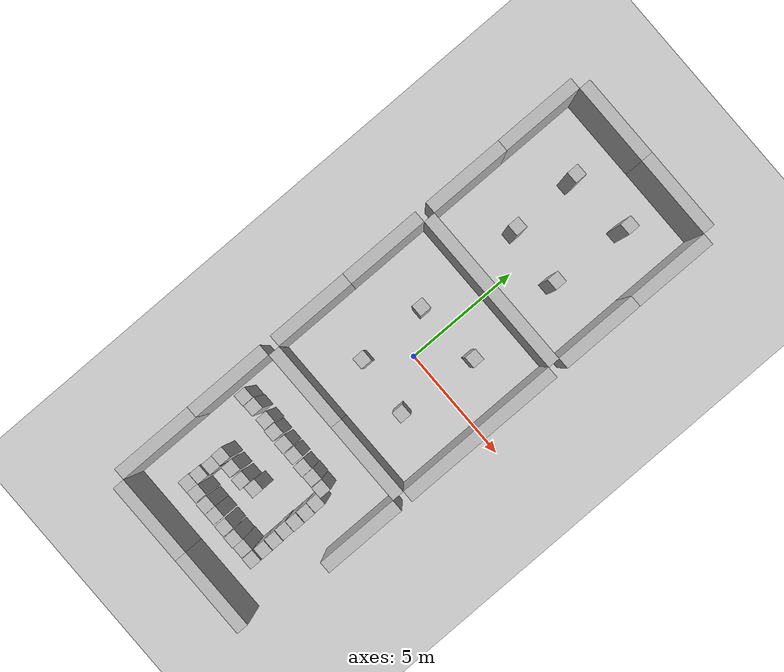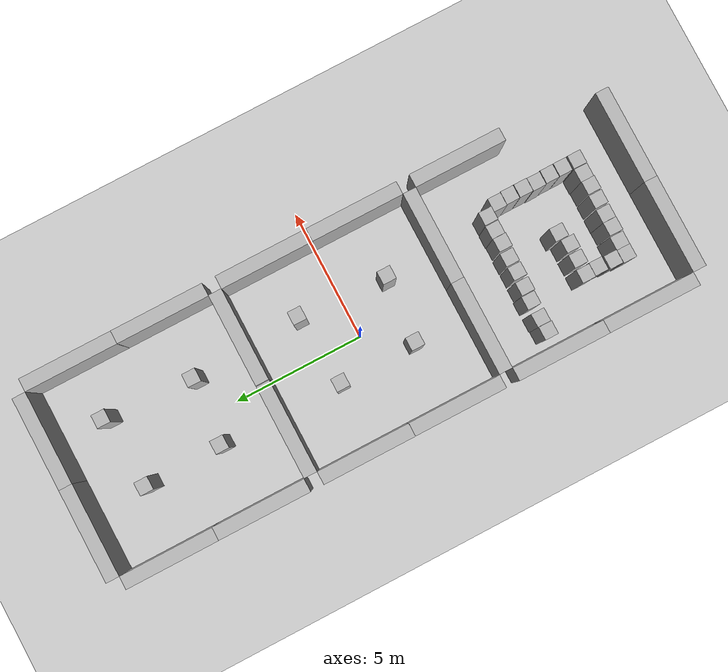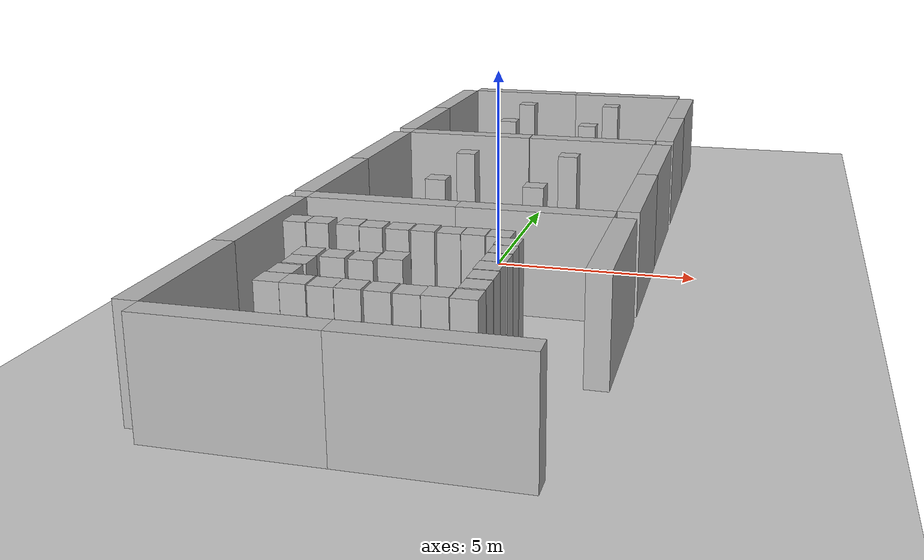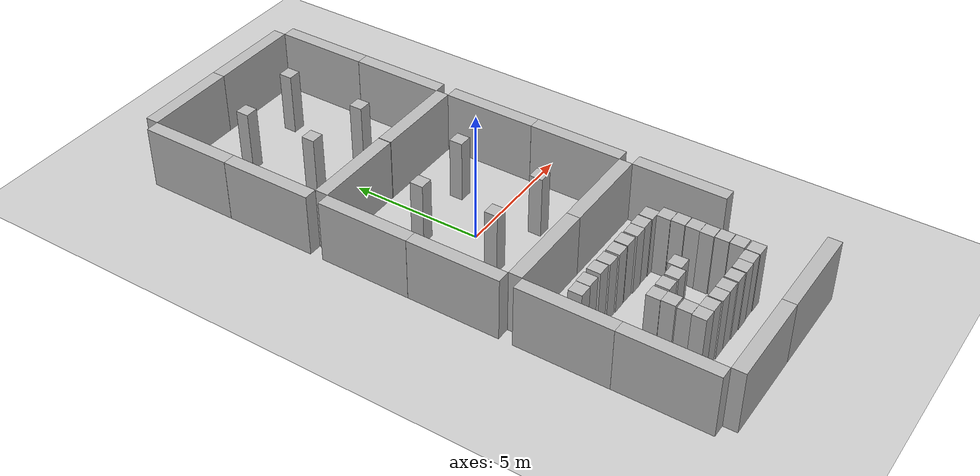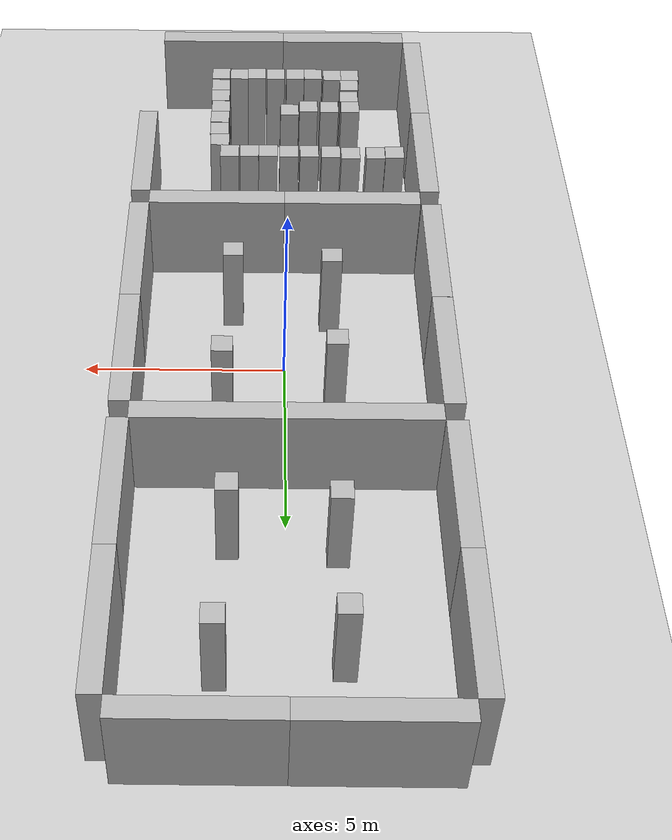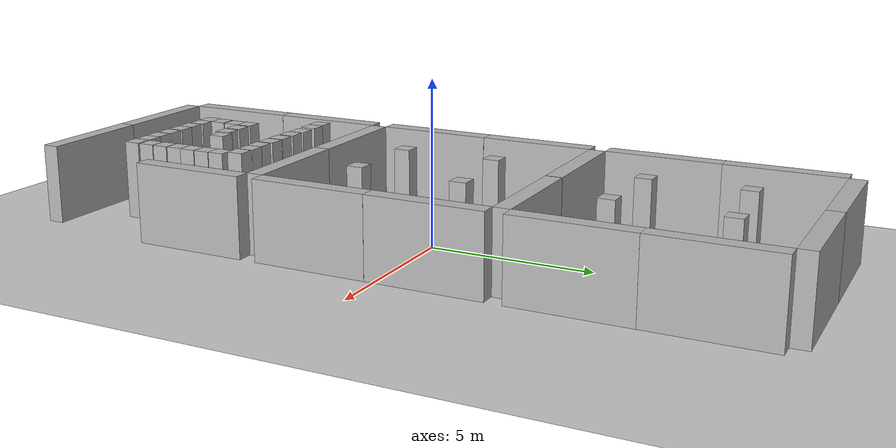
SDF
<sdf version="1.6">
 <world name="default">
  <model name="ground_plane">
   <static>1</static>
   <link name="link">
    <collision name="collision">
     <geometry><plane><normal>0 0 1</normal><size>100 100</size></plane></geometry>
     <surface><friction><ode><mu>100</mu><mu2>50</mu2></ode></friction></surface>
    </collision>
    <visual name="visual">
     <cast_shadows>0</cast_shadows>
     <geometry><plane><normal>0 0 1</normal><size>100 100</size></plane></geometry>
     <material>
      <script><uri>file://media/materials/scripts/gazebo.material</uri><name>Gazebo/Grey</name></script>
     </material>
    </visual>
   </link>
  </model>
  <model name="mywall0_0">
   <static>1</static>
   <link name="link">
    <pose>0 0 1.4 0 -0 0</pose>
    <collision name="collision"><geometry><box><size>3.5 0.5 2.4</size></box></geometry></collision>
    <visual name="visual">
     <cast_shadows>0</cast_shadows>
     <geometry><box><size>3.5 0.5 2.4</size></box></geometry>
     <material>
      <script>
       <uri>model://mywall0/materials/scripts</uri>
       <uri>model://mywall0/materials/textures</uri>
       <name>vrc/mywall0</name>
      </script>
     </material>
    </visual>
   </link>
   <pose>1.77534 3.75 0 0 -0 0</pose>
  </model>
  <model name="mywall0_1">
   <static>1</static>
   <link name="link">
    <pose>0 0 1.4 0 -0 0</pose>
    <collision name="collision"><geometry><box><size>3.5 0.5 2.4</size></box></geometry></collision>
    <visual name="visual">
     <cast_shadows>0</cast_shadows>
     <geometry><box><size>3.5 0.5 2.4</size></box></geometry>
     <material>
      <script>
       <uri>model://mywall0/materials/scripts</uri>
       <uri>model://mywall0/materials/textures</uri>
       <name>vrc/mywall0</name>
      </script>
     </material>
    </visual>
   </link>
   <pose>-1.74865 3.75 0 0 -0 0</pose>
  </model>
  <model name="mywall0_2">
   <static>1</static>
   <link name="link">
    <pose>0 0 1.4 0 -0 0</pose>
    <collision name="collision"><geometry><box><size>3.5 0.5 2.4</size></box></geometry></collision>
    <visual name="visual">
     <cast_shadows>0</cast_shadows>
     <geometry><box><size>3.5 0.5 2.4</size></box></geometry>
     <material>
      <script>
       <uri>model://mywall0/materials/scripts</uri>
       <uri>model://mywall0/materials/textures</uri>
       <name>vrc/mywall0</name>
      </script>
     </material>
    </visual>
   </link>
   <pose>-1.73951 -3.75 0 0 -0 0</pose>
  </model>
  <model name="mywall0_3">
   <static>1</static>
   <link name="link">
    <pose>0 0 1.4 0 -0 0</pose>
    <collision name="collision"><geometry><box><size>3.5 0.5 2.4</size></box></geometry></collision>
    <visual name="visual">
     <cast_shadows>0</cast_shadows>
     <geometry><box><size>3.5 0.5 2.4</size></box></geometry>
     <material>
      <script>
       <uri>model://mywall0/materials/scripts</uri>
       <uri>model://mywall0/materials/textures</uri>
       <name>vrc/mywall0</name>
      </script>
     </material>
    </visual>
   </link>
   <pose>1.75778 -3.75 0 0 -0 0</pose>
  </model>
  <model name="mywall0_4">
   <static>1</static>
   <link name="link">
    <pose>0 0 1.4 0 -0 0</pose>
    <collision name="collision"><geometry><box><size>3.5 0.5 2.4</size></box></geometry></collision>
    <visual name="visual">
     <cast_shadows>0</cast_shadows>
     <geometry><box><size>3.5 0.5 2.4</size></box></geometry>
     <material>
      <script>
       <uri>model://mywall0/materials/scripts</uri>
       <uri>model://mywall0/materials/textures</uri>
       <name>vrc/mywall0</name>
      </script>
     </material>
    </visual>
   </link>
   <pose>-3.75 1.75 0 0 -0 1.57</pose>
  </model>
  <model name="mywall0_4_clone">
   <static>1</static>
   <link name="link">
    <pose>0 0 1.4 0 -0 0</pose>
    <collision name="collision"><geometry><box><size>3.5 0.5 2.4</size></box></geometry></collision>
    <visual name="visual">
     <cast_shadows>0</cast_shadows>
     <geometry><box><size>3.5 0.5 2.4</size></box></geometry>
     <material>
      <script>
       <uri>model://mywall0/materials/scripts</uri>
       <uri>model://mywall0/materials/textures</uri>
       <name>vrc/mywall0</name>
      </script>
     </material>
    </visual>
   </link>
   <pose>-3.7504 -1.75075 0 0 -0 1.57</pose>
  </model>
  <model name="mywall0_4_clone_0">
   <static>1</static>
   <link name="link">
    <pose>0 0 1.4 0 -0 0</pose>
    <collision name="collision"><geometry><box><size>3.5 0.5 2.4</size></box></geometry></collision>
    <visual name="visual">
     <cast_shadows>0</cast_shadows>
     <geometry><box><size>3.5 0.5 2.4</size></box></geometry>
     <material>
      <script>
       <uri>model://mywall0/materials/scripts</uri>
       <uri>model://mywall0/materials/textures</uri>
       <name>vrc/mywall0</name>
      </script>
     </material>
    </visual>
   </link>
   <pose>3.75 1.75 0 0 -0 1.57</pose>
  </model>
  <model name="mywall0_4_clone_1">
   <static>1</static>
   <link name="link">
    <pose>0 0 1.4 0 -0 0</pose>
    <collision name="collision"><geometry><box><size>3.5 0.5 2.4</size></box></geometry></collision>
    <visual name="visual">
     <cast_shadows>0</cast_shadows>
     <geometry><box><size>3.5 0.5 2.4</size></box></geometry>
     <material>
      <script>
       <uri>model://mywall0/materials/scripts</uri>
       <uri>model://mywall0/materials/textures</uri>
       <name>vrc/mywall0</name>
      </script>
     </material>
    </visual>
   </link>
   <pose>3.75 -1.75 0 0 -0 1.57</pose>
  </model>
  <model name="mywall0_4_clone_0_clone_clone_0_clone_2">
   <static>1</static>
   <link name="link">
    <pose>0 0 1.4 0 -0 0</pose>
    <collision name="collision"><geometry><box><size>3.5 0.5 2.4</size></box></geometry></collision>
    <visual name="visual">
     <cast_shadows>0</cast_shadows>
     <geometry><box><size>3.5 0.5 2.4</size></box></geometry>
     <material>
      <script>
       <uri>model://mywall0/materials/scripts</uri>
       <uri>model://mywall0/materials/textures</uri>
       <name>vrc/mywall0</name>
      </script>
     </material>
    </visual>
   </link>
   <pose>-3.75 5.75 0 0 -0 1.57</pose>
  </model>
  <model name="mywall0_4_clone_0_clone_clone_0_clone_3">
   <static>1</static>
   <link name="link">
    <pose>0 0 1.4 0 -0 0</pose>
    <collision name="collision"><geometry><box><size>3.5 0.5 2.4</size></box></geometry></collision>
    <visual name="visual">
     <cast_shadows>0</cast_shadows>
     <geometry><box><size>3.5 0.5 2.4</size></box></geometry>
     <material>
      <script>
       <uri>model://mywall0/materials/scripts</uri>
       <uri>model://mywall0/materials/textures</uri>
       <name>vrc/mywall0</name>
      </script>
     </material>
    </visual>
   </link>
   <pose>-3.75 9.25 0 0 -0 1.57</pose>
  </model>
  <model name="mywall0_4_clone_0_clone_clone_0_clone_4">
   <static>1</static>
   <link name="link">
    <pose>0 0 1.4 0 -0 0</pose>
    <collision name="collision"><geometry><box><size>3.5 0.5 2.4</size></box></geometry></collision>
    <visual name="visual">
     <cast_shadows>0</cast_shadows>
     <geometry><box><size>3.5 0.5 2.4</size></box></geometry>
     <material>
      <script>
       <uri>model://mywall0/materials/scripts</uri>
       <uri>model://mywall0/materials/textures</uri>
       <name>vrc/mywall0</name>
      </script>
     </material>
    </visual>
   </link>
   <pose>3.75 5.75 0 0 -0 1.57</pose>
  </model>
  <model name="mywall0_4_clone_0_clone_clone_0_clone_5">
   <static>1</static>
   <link name="link">
    <pose>0 0 1.4 0 -0 0</pose>
    <collision name="collision"><geometry><box><size>3.5 0.5 2.4</size></box></geometry></collision>
    <visual name="visual">
     <cast_shadows>0</cast_shadows>
     <geometry><box><size>3.5 0.5 2.4</size></box></geometry>
     <material>
      <script>
       <uri>model://mywall0/materials/scripts</uri>
       <uri>model://mywall0/materials/textures</uri>
       <name>vrc/mywall0</name>
      </script>
     </material>
    </visual>
   </link>
   <pose>3.75 9.25 0 0 -0 1.57</pose>
  </model>
  <model name="mywall0_1_clone_1_clone_3_clone_5">
   <static>1</static>
   <link name="link">
    <pose>0 0 1.4 0 -0 0</pose>
    <collision name="collision"><geometry><box><size>3.5 0.5 2.4</size></box></geometry></collision>
    <visual name="visual">
     <cast_shadows>0</cast_shadows>
     <geometry><box><size>3.5 0.5 2.4</size></box></geometry>
     <material>
      <script>
       <uri>model://mywall0/materials/scripts</uri>
       <uri>model://mywall0/materials/textures</uri>
       <name>vrc/mywall0</name>
      </script>
     </material>
    </visual>
   </link>
   <pose>-1.75 11.25 0 0 -0 0</pose>
  </model>
  <model name="mywall0_1_clone_1_clone_3_clone_6">
   <static>1</static>
   <link name="link">
    <pose>0 0 1.4 0 -0 0</pose>
    <collision name="collision"><geometry><box><size>3.5 0.5 2.4</size></box></geometry></collision>
    <visual name="visual">
     <cast_shadows>0</cast_shadows>
     <geometry><box><size>3.5 0.5 2.4</size></box></geometry>
     <material>
      <script>
       <uri>model://mywall0/materials/scripts</uri>
       <uri>model://mywall0/materials/textures</uri>
       <name>vrc/mywall0</name>
      </script>
     </material>
    </visual>
   </link>
   <pose>1.75 11.25 0 0 -0 0</pose>
  </model>
  <model name="mypillar_clone_0">
   <static>1</static>
   <link name="link">
    <pose>0 0 1.4 0 -0 0</pose>
    <collision name="collision"><geometry><box><size>0.5 0.5 2.4</size></box></geometry></collision>
    <visual name="visual">
     <cast_shadows>0</cast_shadows>
     <geometry><box><size>0.5 0.5 2.4</size></box></geometry>
     <material>
      <script>
       <uri>model://mypillar/materials/scripts</uri>
       <uri>model://mypillar/materials/textures</uri>
       <name>vrc/mypillar</name>
      </script>
     </material>
    </visual>
   </link>
   <pose>-1.2 1.4 0 0 -0 0</pose>
  </model>
  <model name="mypillar_clone_clone">
   <static>1</static>
   <link name="link">
    <pose>0 0 1.4 0 -0 0</pose>
    <collision name="collision"><geometry><box><size>0.5 0.5 2.4</size></box></geometry></collision>
    <visual name="visual">
     <cast_shadows>0</cast_shadows>
     <geometry><box><size>0.5 0.5 2.4</size></box></geometry>
     <material>
      <script>
       <uri>model://mypillar/materials/scripts</uri>
       <uri>model://mypillar/materials/textures</uri>
       <name>vrc/mypillar</name>
      </script>
     </material>
    </visual>
   </link>
   <pose>-1.15 -1.5 0 0 -0 0</pose>
  </model>
  <model name="mypillar_0_clone">
   <static>1</static>
   <link name="link">
    <pose>0 0 1.4 0 -0 0</pose>
    <collision name="collision"><geometry><box><size>0.5 0.5 2.4</size></box></geometry></collision>
    <visual name="visual">
     <cast_shadows>0</cast_shadows>
     <geometry><box><size>0.5 0.5 2.4</size></box></geometry>
     <material>
      <script>
       <uri>model://mypillar/materials/scripts</uri>
       <uri>model://mypillar/materials/textures</uri>
       <name>vrc/mypillar</name>
      </script>
     </material>
    </visual>
   </link>
   <pose>1.3 -1.7 0 0 -0 0</pose>
  </model>
  <model name="mypillar_1_clone">
   <static>1</static>
   <link name="link">
    <pose>0 0 1.4 0 -0 0</pose>
    <collision name="collision"><geometry><box><size>0.5 0.5 2.4</size></box></geometry></collision>
    <visual name="visual">
     <cast_shadows>0</cast_shadows>
     <geometry><box><size>0.5 0.5 2.4</size></box></geometry>
     <material>
      <script>
       <uri>model://mypillar/materials/scripts</uri>
       <uri>model://mypillar/materials/textures</uri>
       <name>vrc/mypillar</name>
      </script>
     </material>
    </visual>
   </link>
   <pose>1.5 1.65 0 0 -0 0</pose>
  </model>
  <model name="mypillar_clone_0_clone">
   <static>1</static>
   <link name="link">
    <pose>0 0 1.4 0 -0 0</pose>
    <collision name="collision"><geometry><box><size>0.5 0.5 2.4</size></box></geometry></collision>
    <visual name="visual">
     <cast_shadows>0</cast_shadows>
     <geometry><box><size>0.5 0.5 2.4</size></box></geometry>
     <material>
      <script>
       <uri>model://mypillar/materials/scripts</uri>
       <uri>model://mypillar/materials/textures</uri>
       <name>vrc/mypillar</name>
      </script>
     </material>
    </visual>
   </link>
   <pose>-1.2 8.9 0 0 -0 0</pose>
  </model>
  <model name="mypillar_clone_0_clone_0">
   <static>1</static>
   <link name="link">
    <pose>0 0 1.4 0 -0 0</pose>
    <collision name="collision"><geometry><box><size>0.5 0.5 2.4</size></box></geometry></collision>
    <visual name="visual">
     <cast_shadows>0</cast_shadows>
     <geometry><box><size>0.5 0.5 2.4</size></box></geometry>
     <material>
      <script>
       <uri>model://mypillar/materials/scripts</uri>
       <uri>model://mypillar/materials/textures</uri>
       <name>vrc/mypillar</name>
      </script>
     </material>
    </visual>
   </link>
   <pose>-1.15 6 0 0 -0 0</pose>
  </model>
  <model name="mypillar_clone_0_clone_1">
   <static>1</static>
   <link name="link">
    <pose>0 0 1.4 0 -0 0</pose>
    <collision name="collision"><geometry><box><size>0.5 0.5 2.4</size></box></geometry></collision>
    <visual name="visual">
     <cast_shadows>0</cast_shadows>
     <geometry><box><size>0.5 0.5 2.4</size></box></geometry>
     <material>
      <script>
       <uri>model://mypillar/materials/scripts</uri>
       <uri>model://mypillar/materials/textures</uri>
       <name>vrc/mypillar</name>
      </script>
     </material>
    </visual>
   </link>
   <pose>1.5 9.15 0 0 -0 0</pose>
  </model>
  <model name="mypillar_clone_0_clone_2">
   <static>1</static>
   <link name="link">
    <pose>0 0 1.4 0 -0 0</pose>
    <collision name="collision"><geometry><box><size>0.5 0.5 2.4</size></box></geometry></collision>
    <visual name="visual">
     <cast_shadows>0</cast_shadows>
     <geometry><box><size>0.5 0.5 2.4</size></box></geometry>
     <material>
      <script>
       <uri>model://mypillar/materials/scripts</uri>
       <uri>model://mypillar/materials/textures</uri>
       <name>vrc/mypillar</name>
      </script>
     </material>
    </visual>
   </link>
   <pose>1.3 5.8 0 0 -0 0</pose>
  </model>
  <model name="mywall0_4_clone_1_clone">
   <static>1</static>
   <link name="link">
    <pose>0 0 1.4 0 -0 0</pose>
    <collision name="collision"><geometry><box><size>3.5 0.5 2.4</size></box></geometry></collision>
    <visual name="visual">
     <cast_shadows>0</cast_shadows>
     <geometry><box><size>3.5 0.5 2.4</size></box></geometry>
     <material>
      <script>
       <uri>model://mywall0/materials/scripts</uri>
       <uri>model://mywall0/materials/textures</uri>
       <name>vrc/mywall0</name>
      </script>
     </material>
    </visual>
   </link>
   <pose>3.75 -5.75 0 0 -0 1.57</pose>
  </model>
  <model name="mywall0_4_clone_1_clone_clone">
   <static>1</static>
   <link name="link">
    <pose>0 0 1.4 0 -0 0</pose>
    <collision name="collision"><geometry><box><size>3.5 0.5 2.4</size></box></geometry></collision>
    <visual name="visual">
     <cast_shadows>0</cast_shadows>
     <geometry><box><size>3.5 0.5 2.4</size></box></geometry>
     <material>
      <script>
       <uri>model://mywall0/materials/scripts</uri>
       <uri>model://mywall0/materials/textures</uri>
       <name>vrc/mywall0</name>
      </script>
     </material>
    </visual>
   </link>
   <pose>-3.75 -5.75 0 0 -0 1.57</pose>
  </model>
  <model name="mywall0_4_clone_1_clone_clone_0">
   <static>1</static>
   <link name="link">
    <pose>0 0 1.4 0 -0 0</pose>
    <collision name="collision"><geometry><box><size>3.5 0.5 2.4</size></box></geometry></collision>
    <visual name="visual">
     <cast_shadows>0</cast_shadows>
     <geometry><box><size>3.5 0.5 2.4</size></box></geometry>
     <material>
      <script>
       <uri>model://mywall0/materials/scripts</uri>
       <uri>model://mywall0/materials/textures</uri>
       <name>vrc/mywall0</name>
      </script>
     </material>
    </visual>
   </link>
   <pose>-3.75 -9.25 0 0 -0 1.57</pose>
  </model>
  <model name="mywall0_3_clone_0_clone_clone">
   <static>1</static>
   <link name="link">
    <pose>0 0 1.4 0 -0 0</pose>
    <collision name="collision"><geometry><box><size>3.5 0.5 2.4</size></box></geometry></collision>
    <visual name="visual">
     <cast_shadows>0</cast_shadows>
     <geometry><box><size>3.5 0.5 2.4</size></box></geometry>
     <material>
      <script>
       <uri>model://mywall0/materials/scripts</uri>
       <uri>model://mywall0/materials/textures</uri>
       <name>vrc/mywall0</name>
      </script>
     </material>
    </visual>
   </link>
   <pose>1.75 -11.25 0 0 -0 0</pose>
  </model>
  <model name="mywall0_3_clone_0_clone_clone_0">
   <static>1</static>
   <link name="link">
    <pose>0 0 1.4 0 -0 0</pose>
    <collision name="collision"><geometry><box><size>3.5 0.5 2.4</size></box></geometry></collision>
    <visual name="visual">
     <cast_shadows>0</cast_shadows>
     <geometry><box><size>3.5 0.5 2.4</size></box></geometry>
     <material>
      <script>
       <uri>model://mywall0/materials/scripts</uri>
       <uri>model://mywall0/materials/textures</uri>
       <name>vrc/mywall0</name>
      </script>
     </material>
    </visual>
   </link>
   <pose>-1.75 -11.25 0 0 -0 0</pose>
  </model>
  <model name="mypillar_clone_clone_3_clone">
   <static>1</static>
   <link name="link">
    <pose>0 0 1.4 0 -0 0</pose>
    <collision name="collision"><geometry><box><size>0.5 0.5 2.4</size></box></geometry></collision>
    <visual name="visual">
     <cast_shadows>0</cast_shadows>
     <geometry><box><size>0.5 0.5 2.4</size></box></geometry>
     <material>
      <script>
       <uri>model://mypillar/materials/scripts</uri>
       <uri>model://mypillar/materials/textures</uri>
       <name>vrc/mypillar</name>
      </script>
     </material>
    </visual>
   </link>
   <pose>-2.94445 -5.68403 0 0 -0 0</pose>
  </model>
  <model name="mypillar_clone_clone_2_clone_clone_16">
   <static>1</static>
   <link name="link">
    <pose>0 0 1.4 0 -0 0</pose>
    <collision name="collision"><geometry><box><size>0.5 0.5 2.4</size></box></geometry></collision>
    <visual name="visual">
     <cast_shadows>0</cast_shadows>
     <geometry><box><size>0.5 0.5 2.4</size></box></geometry>
     <material>
      <script>
       <uri>model://mypillar/materials/scripts</uri>
       <uri>model://mypillar/materials/textures</uri>
       <name>vrc/mypillar</name>
      </script>
     </material>
    </visual>
   </link>
   <pose>-2.43378 -5.66166 0 0 -0 0</pose>
  </model>
  <model name="mypillar_clone_clone_2_clone_clone_17">
   <static>1</static>
   <link name="link">
    <pose>0 0 1.4 0 -0 0</pose>
    <collision name="collision"><geometry><box><size>0.5 0.5 2.4</size></box></geometry></collision>
    <visual name="visual">
     <cast_shadows>0</cast_shadows>
     <geometry><box><size>0.5 0.5 2.4</size></box></geometry>
     <material>
      <script>
       <uri>model://mypillar/materials/scripts</uri>
       <uri>model://mypillar/materials/textures</uri>
       <name>vrc/mypillar</name>
      </script>
     </material>
    </visual>
   </link>
   <pose>-1.76582 -5.65183 0 0 -0 0</pose>
  </model>
  <model name="mypillar_clone_clone_2_clone_clone_17_clone">
   <static>1</static>
   <link name="link">
    <pose>0 0 1.4 0 -0 0</pose>
    <collision name="collision"><geometry><box><size>0.5 0.5 2.4</size></box></geometry></collision>
    <visual name="visual">
     <cast_shadows>0</cast_shadows>
     <geometry><box><size>0.5 0.5 2.4</size></box></geometry>
     <material>
      <script>
       <uri>model://mypillar/materials/scripts</uri>
       <uri>model://mypillar/materials/textures</uri>
       <name>vrc/mypillar</name>
      </script>
     </material>
    </visual>
   </link>
   <pose>-1.24108 -5.69421 0 0 -0 0</pose>
  </model>
  <model name="mypillar_clone_clone_2_clone_clone_17_clone_0">
   <static>1</static>
   <link name="link">
    <pose>0 0 1.4 0 -0 0</pose>
    <collision name="collision"><geometry><box><size>0.5 0.5 2.4</size></box></geometry></collision>
    <visual name="visual">
     <cast_shadows>0</cast_shadows>
     <geometry><box><size>0.5 0.5 2.4</size></box></geometry>
     <material>
      <script>
       <uri>model://mypillar/materials/scripts</uri>
       <uri>model://mypillar/materials/textures</uri>
       <name>vrc/mypillar</name>
      </script>
     </material>
    </visual>
   </link>
   <pose>-0.662491 -5.7062 0 0 -0 0</pose>
  </model>
  <model name="mypillar_clone_clone_2_clone_clone_17_clone_1">
   <static>1</static>
   <link name="link">
    <pose>0 0 1.4 0 -0 0</pose>
    <collision name="collision"><geometry><box><size>0.5 0.5 2.4</size></box></geometry></collision>
    <visual name="visual">
     <cast_shadows>0</cast_shadows>
     <geometry><box><size>0.5 0.5 2.4</size></box></geometry>
     <material>
      <script>
       <uri>model://mypillar/materials/scripts</uri>
       <uri>model://mypillar/materials/textures</uri>
       <name>vrc/mypillar</name>
      </script>
     </material>
    </visual>
   </link>
   <pose>-0.120874 -5.70171 0 0 -0 0</pose>
  </model>
  <model name="mypillar_clone_clone_2_clone_clone_17_clone_2">
   <static>1</static>
   <link name="link">
    <pose>0 0 1.4 0 -0 0</pose>
    <collision name="collision"><geometry><box><size>0.5 0.5 2.4</size></box></geometry></collision>
    <visual name="visual">
     <cast_shadows>0</cast_shadows>
     <geometry><box><size>0.5 0.5 2.4</size></box></geometry>
     <material>
      <script>
       <uri>model://mypillar/materials/scripts</uri>
       <uri>model://mypillar/materials/textures</uri>
       <name>vrc/mypillar</name>
      </script>
     </material>
    </visual>
   </link>
   <pose>0.440232 -5.73248 0 0 -0 0</pose>
  </model>
  <model name="mypillar_clone_clone_2_clone_clone_17_clone_3">
   <static>1</static>
   <link name="link">
    <pose>0 0 1.4 0 -0 0</pose>
    <collision name="collision"><geometry><box><size>0.5 0.5 2.4</size></box></geometry></collision>
    <visual name="visual">
     <cast_shadows>0</cast_shadows>
     <geometry><box><size>0.5 0.5 2.4</size></box></geometry>
     <material>
      <script>
       <uri>model://mypillar/materials/scripts</uri>
       <uri>model://mypillar/materials/textures</uri>
       <name>vrc/mypillar</name>
      </script>
     </material>
    </visual>
   </link>
   <pose>0.944881 -5.71162 0 0 -0 0</pose>
  </model>
  <model name="mypillar_clone_clone_2_clone_clone_17_clone_4">
   <static>1</static>
   <link name="link">
    <pose>0 0 1.4 0 -0 0</pose>
    <collision name="collision"><geometry><box><size>0.5 0.5 2.4</size></box></geometry></collision>
    <visual name="visual">
     <cast_shadows>0</cast_shadows>
     <geometry><box><size>0.5 0.5 2.4</size></box></geometry>
     <material>
      <script>
       <uri>model://mypillar/materials/scripts</uri>
       <uri>model://mypillar/materials/textures</uri>
       <name>vrc/mypillar</name>
      </script>
     </material>
    </visual>
   </link>
   <pose>1.469 -5.72591 0 0 -0 0</pose>
  </model>
  <model name="mypillar_clone_clone_2_clone_clone_17_clone_5">
   <static>1</static>
   <link name="link">
    <pose>0 0 1.4 0 -0 0</pose>
    <collision name="collision"><geometry><box><size>0.5 0.5 2.4</size></box></geometry></collision>
    <visual name="visual">
     <cast_shadows>0</cast_shadows>
     <geometry><box><size>0.5 0.5 2.4</size></box></geometry>
     <material>
      <script>
       <uri>model://mypillar/materials/scripts</uri>
       <uri>model://mypillar/materials/textures</uri>
       <name>vrc/mypillar</name>
      </script>
     </material>
    </visual>
   </link>
   <pose>1.74331 -6.22411 0 0 -0 0</pose>
  </model>
  <model name="mypillar_clone_clone_2_clone_clone_17_clone_6">
   <static>1</static>
   <link name="link">
    <pose>0 0 1.4 0 -0 0</pose>
    <collision name="collision"><geometry><box><size>0.5 0.5 2.4</size></box></geometry></collision>
    <visual name="visual">
     <cast_shadows>0</cast_shadows>
     <geometry><box><size>0.5 0.5 2.4</size></box></geometry>
     <material>
      <script>
       <uri>model://mypillar/materials/scripts</uri>
       <uri>model://mypillar/materials/textures</uri>
       <name>vrc/mypillar</name>
      </script>
     </material>
    </visual>
   </link>
   <pose>1.76367 -6.72922 0 0 -0 0</pose>
  </model>
  <model name="mypillar_clone_clone_2_clone_clone_17_clone_7">
   <static>1</static>
   <link name="link">
    <pose>0 0 1.4 0 -0 0</pose>
    <collision name="collision"><geometry><box><size>0.5 0.5 2.4</size></box></geometry></collision>
    <visual name="visual">
     <cast_shadows>0</cast_shadows>
     <geometry><box><size>0.5 0.5 2.4</size></box></geometry>
     <material>
      <script>
       <uri>model://mypillar/materials/scripts</uri>
       <uri>model://mypillar/materials/textures</uri>
       <name>vrc/mypillar</name>
      </script>
     </material>
    </visual>
   </link>
   <pose>1.76671 -7.25054 0 0 -0 0</pose>
  </model>
  <model name="mypillar_clone_clone_2_clone_clone_17_clone_8">
   <static>1</static>
   <link name="link">
    <pose>0 0 1.4 0 -0 0</pose>
    <collision name="collision"><geometry><box><size>0.5 0.5 2.4</size></box></geometry></collision>
    <visual name="visual">
     <cast_shadows>0</cast_shadows>
     <geometry><box><size>0.5 0.5 2.4</size></box></geometry>
     <material>
      <script>
       <uri>model://mypillar/materials/scripts</uri>
       <uri>model://mypillar/materials/textures</uri>
       <name>vrc/mypillar</name>
      </script>
     </material>
    </visual>
   </link>
   <pose>1.75096 -7.75511 0 0 -0 0</pose>
  </model>
  <model name="mypillar_clone_clone_2_clone_clone_17_clone_9">
   <static>1</static>
   <link name="link">
    <pose>0 0 1.4 0 -0 0</pose>
    <collision name="collision"><geometry><box><size>0.5 0.5 2.4</size></box></geometry></collision>
    <visual name="visual">
     <cast_shadows>0</cast_shadows>
     <geometry><box><size>0.5 0.5 2.4</size></box></geometry>
     <material>
      <script>
       <uri>model://mypillar/materials/scripts</uri>
       <uri>model://mypillar/materials/textures</uri>
       <name>vrc/mypillar</name>
      </script>
     </material>
    </visual>
   </link>
   <pose>1.77181 -8.27363 0 0 -0 0</pose>
  </model>
  <model name="mypillar_clone_clone_2_clone_clone_17_clone_10">
   <static>1</static>
   <link name="link">
    <pose>0 0 1.4 0 -0 0</pose>
    <collision name="collision"><geometry><box><size>0.5 0.5 2.4</size></box></geometry></collision>
    <visual name="visual">
     <cast_shadows>0</cast_shadows>
     <geometry><box><size>0.5 0.5 2.4</size></box></geometry>
     <material>
      <script>
       <uri>model://mypillar/materials/scripts</uri>
       <uri>model://mypillar/materials/textures</uri>
       <name>vrc/mypillar</name>
      </script>
     </material>
    </visual>
   </link>
   <pose>1.7747 -8.79373 0 0 -0 0</pose>
  </model>
  <model name="mypillar_clone_clone_2_clone_clone_17_clone_11">
   <static>1</static>
   <link name="link">
    <pose>0 0 1.4 0 -0 0</pose>
    <collision name="collision"><geometry><box><size>0.5 0.5 2.4</size></box></geometry></collision>
    <visual name="visual">
     <cast_shadows>0</cast_shadows>
     <geometry><box><size>0.5 0.5 2.4</size></box></geometry>
     <material>
      <script>
       <uri>model://mypillar/materials/scripts</uri>
       <uri>model://mypillar/materials/textures</uri>
       <name>vrc/mypillar</name>
      </script>
     </material>
    </visual>
   </link>
   <pose>1.77907 -9.34665 0 0 -0 0</pose>
  </model>
  <model name="mypillar_clone_clone_2_clone_clone_17_clone_12">
   <static>1</static>
   <link name="link">
    <pose>0 0 1.4 0 -0 0</pose>
    <collision name="collision"><geometry><box><size>0.5 0.5 2.4</size></box></geometry></collision>
    <visual name="visual">
     <cast_shadows>0</cast_shadows>
     <geometry><box><size>0.5 0.5 2.4</size></box></geometry>
     <material>
      <script>
       <uri>model://mypillar/materials/scripts</uri>
       <uri>model://mypillar/materials/textures</uri>
       <name>vrc/mypillar</name>
      </script>
     </material>
    </visual>
   </link>
   <pose>1.26064 -9.33248 0 0 -0 0</pose>
  </model>
  <model name="mypillar_clone_clone_2_clone_clone_17_clone_13">
   <static>1</static>
   <link name="link">
    <pose>0 0 1.4 0 -0 0</pose>
    <collision name="collision"><geometry><box><size>0.5 0.5 2.4</size></box></geometry></collision>
    <visual name="visual">
     <cast_shadows>0</cast_shadows>
     <geometry><box><size>0.5 0.5 2.4</size></box></geometry>
     <material>
      <script>
       <uri>model://mypillar/materials/scripts</uri>
       <uri>model://mypillar/materials/textures</uri>
       <name>vrc/mypillar</name>
      </script>
     </material>
    </visual>
   </link>
   <pose>0.761513 -9.35287 0 0 -0 0</pose>
  </model>
  <model name="mypillar_clone_clone_2_clone_clone_17_clone_14">
   <static>1</static>
   <link name="link">
    <pose>0 0 1.4 0 -0 0</pose>
    <collision name="collision"><geometry><box><size>0.5 0.5 2.4</size></box></geometry></collision>
    <visual name="visual">
     <cast_shadows>0</cast_shadows>
     <geometry><box><size>0.5 0.5 2.4</size></box></geometry>
     <material>
      <script>
       <uri>model://mypillar/materials/scripts</uri>
       <uri>model://mypillar/materials/textures</uri>
       <name>vrc/mypillar</name>
      </script>
     </material>
    </visual>
   </link>
   <pose>0.225149 -9.33966 0 0 -0 0</pose>
  </model>
  <model name="mypillar_clone_clone_2_clone_clone_17_clone_15">
   <static>1</static>
   <link name="link">
    <pose>0 0 1.4 0 -0 0</pose>
    <collision name="collision"><geometry><box><size>0.5 0.5 2.4</size></box></geometry></collision>
    <visual name="visual">
     <cast_shadows>0</cast_shadows>
     <geometry><box><size>0.5 0.5 2.4</size></box></geometry>
     <material>
      <script>
       <uri>model://mypillar/materials/scripts</uri>
       <uri>model://mypillar/materials/textures</uri>
       <name>vrc/mypillar</name>
      </script>
     </material>
    </visual>
   </link>
   <pose>-0.329226 -9.32692 0 0 -0 0</pose>
  </model>
  <model name="mypillar_clone_clone_2_clone_clone_17_clone_16">
   <static>1</static>
   <link name="link">
    <pose>0 0 1.4 0 -0 0</pose>
    <collision name="collision"><geometry><box><size>0.5 0.5 2.4</size></box></geometry></collision>
    <visual name="visual">
     <cast_shadows>0</cast_shadows>
     <geometry><box><size>0.5 0.5 2.4</size></box></geometry>
     <material>
      <script>
       <uri>model://mypillar/materials/scripts</uri>
       <uri>model://mypillar/materials/textures</uri>
       <name>vrc/mypillar</name>
      </script>
     </material>
    </visual>
   </link>
   <pose>-0.834252 -9.33028 0 0 -0 0</pose>
  </model>
  <model name="mypillar_clone_clone_2_clone_clone_17_clone_17">
   <static>1</static>
   <link name="link">
    <pose>0 0 1.4 0 -0 0</pose>
    <collision name="collision"><geometry><box><size>0.5 0.5 2.4</size></box></geometry></collision>
    <visual name="visual">
     <cast_shadows>0</cast_shadows>
     <geometry><box><size>0.5 0.5 2.4</size></box></geometry>
     <material>
      <script>
       <uri>model://mypillar/materials/scripts</uri>
       <uri>model://mypillar/materials/textures</uri>
       <name>vrc/mypillar</name>
      </script>
     </material>
    </visual>
   </link>
   <pose>-1.37153 -9.29903 0 0 -0 0</pose>
  </model>
  <model name="mypillar_clone_clone_2_clone_clone_17_clone_18">
   <static>1</static>
   <link name="link">
    <pose>0 0 1.4 0 -0 0</pose>
    <collision name="collision"><geometry><box><size>0.5 0.5 2.4</size></box></geometry></collision>
    <visual name="visual">
     <cast_shadows>0</cast_shadows>
     <geometry><box><size>0.5 0.5 2.4</size></box></geometry>
     <material>
      <script>
       <uri>model://mypillar/materials/scripts</uri>
       <uri>model://mypillar/materials/textures</uri>
       <name>vrc/mypillar</name>
      </script>
     </material>
    </visual>
   </link>
   <pose>-1.8717 -9.3019 0 0 -0 0</pose>
  </model>
  <model name="mypillar_clone_clone_2_clone_clone_17_clone_19">
   <static>1</static>
   <link name="link">
    <pose>0 0 1.4 0 -0 0</pose>
    <collision name="collision"><geometry><box><size>0.5 0.5 2.4</size></box></geometry></collision>
    <visual name="visual">
     <cast_shadows>0</cast_shadows>
     <geometry><box><size>0.5 0.5 2.4</size></box></geometry>
     <material>
      <script>
       <uri>model://mypillar/materials/scripts</uri>
       <uri>model://mypillar/materials/textures</uri>
       <name>vrc/mypillar</name>
      </script>
     </material>
    </visual>
   </link>
   <pose>-1.84299 -8.79751 0 0 -0 0</pose>
  </model>
  <model name="mypillar_clone_clone_2_clone_clone_17_clone_20">
   <static>1</static>
   <link name="link">
    <pose>0 0 1.4 0 -0 0</pose>
    <collision name="collision"><geometry><box><size>0.5 0.5 2.4</size></box></geometry></collision>
    <visual name="visual">
     <cast_shadows>0</cast_shadows>
     <geometry><box><size>0.5 0.5 2.4</size></box></geometry>
     <material>
      <script>
       <uri>model://mypillar/materials/scripts</uri>
       <uri>model://mypillar/materials/textures</uri>
       <name>vrc/mypillar</name>
      </script>
     </material>
    </visual>
   </link>
   <pose>-1.81057 -8.24254 0 0 -0 0</pose>
  </model>
  <model name="mypillar_clone_clone_2_clone_clone_17_clone_21">
   <static>1</static>
   <link name="link">
    <pose>0 0 1.4 0 -0 0</pose>
    <collision name="collision"><geometry><box><size>0.5 0.5 2.4</size></box></geometry></collision>
    <visual name="visual">
     <cast_shadows>0</cast_shadows>
     <geometry><box><size>0.5 0.5 2.4</size></box></geometry>
     <material>
      <script>
       <uri>model://mypillar/materials/scripts</uri>
       <uri>model://mypillar/materials/textures</uri>
       <name>vrc/mypillar</name>
      </script>
     </material>
    </visual>
   </link>
   <pose>-1.82974 -7.74156 0 0 -0 0</pose>
  </model>
  <model name="mypillar_clone_clone_2_clone_clone_17_clone_22">
   <static>1</static>
   <link name="link">
    <pose>0 0 1.4 0 -0 0</pose>
    <collision name="collision"><geometry><box><size>0.5 0.5 2.4</size></box></geometry></collision>
    <visual name="visual">
     <cast_shadows>0</cast_shadows>
     <geometry><box><size>0.5 0.5 2.4</size></box></geometry>
     <material>
      <script>
       <uri>model://mypillar/materials/scripts</uri>
       <uri>model://mypillar/materials/textures</uri>
       <name>vrc/mypillar</name>
      </script>
     </material>
    </visual>
   </link>
   <pose>-1.25182 -7.75064 0 0 -0 0</pose>
  </model>
  <model name="mypillar_clone_clone_2_clone_clone_17_clone_23">
   <static>1</static>
   <link name="link">
    <pose>0 0 1.4 0 -0 0</pose>
    <collision name="collision"><geometry><box><size>0.5 0.5 2.4</size></box></geometry></collision>
    <visual name="visual">
     <cast_shadows>0</cast_shadows>
     <geometry><box><size>0.5 0.5 2.4</size></box></geometry>
     <material>
      <script>
       <uri>model://mypillar/materials/scripts</uri>
       <uri>model://mypillar/materials/textures</uri>
       <name>vrc/mypillar</name>
      </script>
     </material>
    </visual>
   </link>
   <pose>-0.677137 -7.76284 0 0 -0 0</pose>
  </model>
  <model name="mypillar_clone_clone_2_clone_clone_17_clone_24">
   <static>1</static>
   <link name="link">
    <pose>0 0 1.4 0 -0 0</pose>
    <collision name="collision"><geometry><box><size>0.5 0.5 2.4</size></box></geometry></collision>
    <visual name="visual">
     <cast_shadows>0</cast_shadows>
     <geometry><box><size>0.5 0.5 2.4</size></box></geometry>
     <material>
      <script>
       <uri>model://mypillar/materials/scripts</uri>
       <uri>model://mypillar/materials/textures</uri>
       <name>vrc/mypillar</name>
      </script>
     </material>
    </visual>
   </link>
   <pose>-0.151759 -7.59874 0 0 -0 0</pose>
  </model>
 </world>
</sdf>
